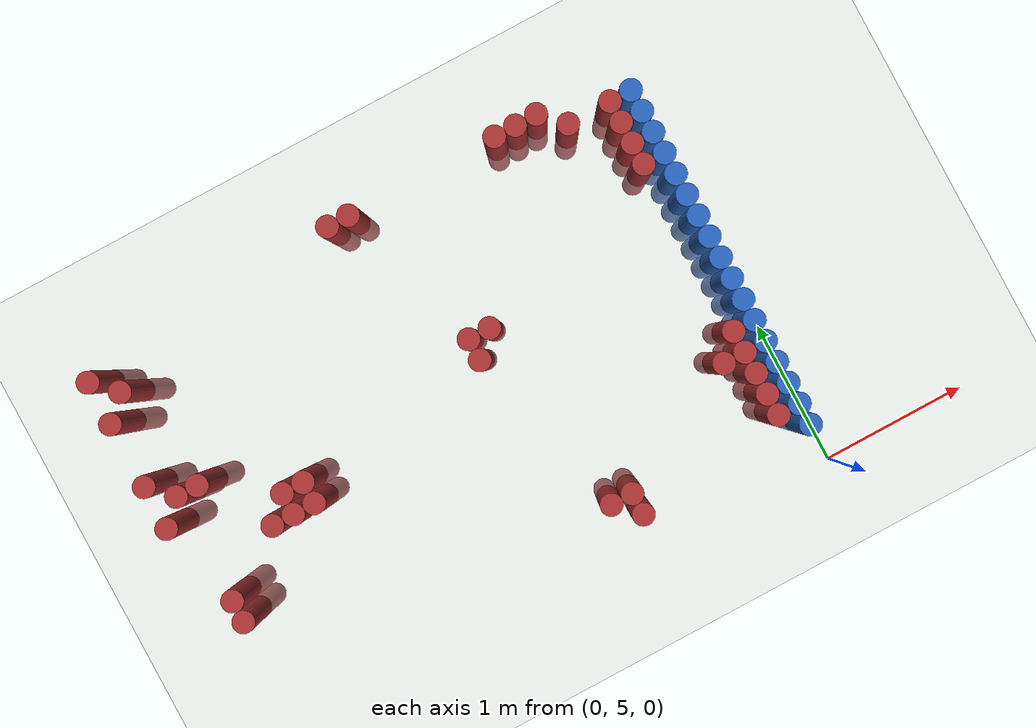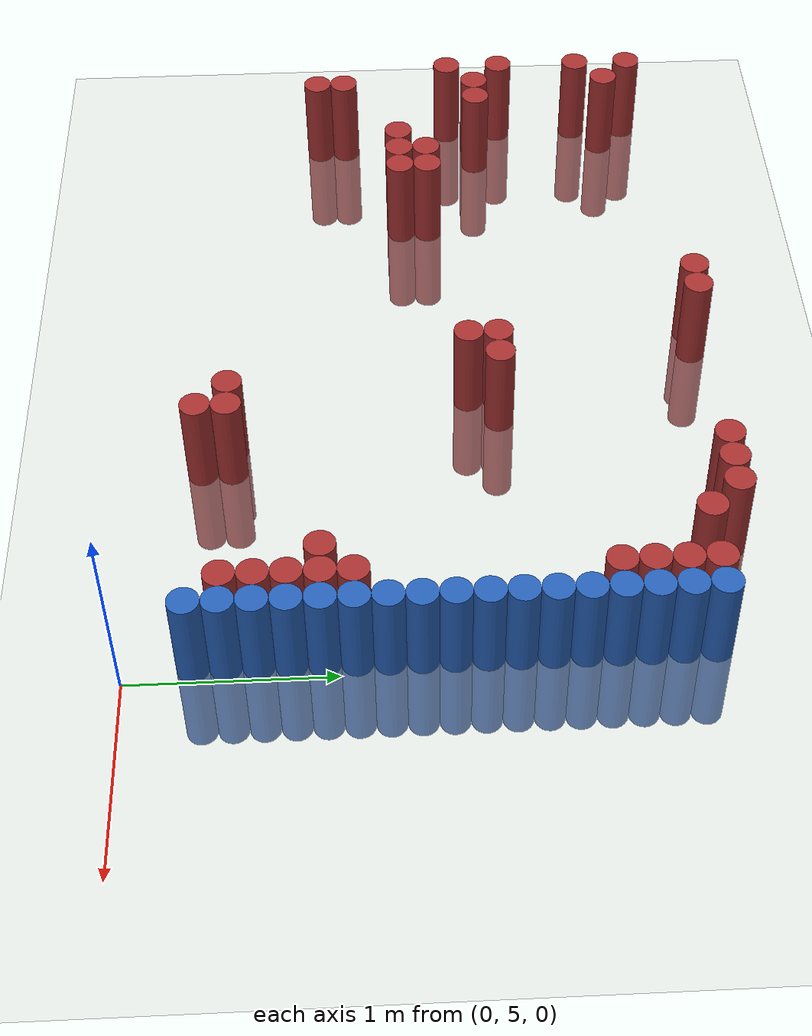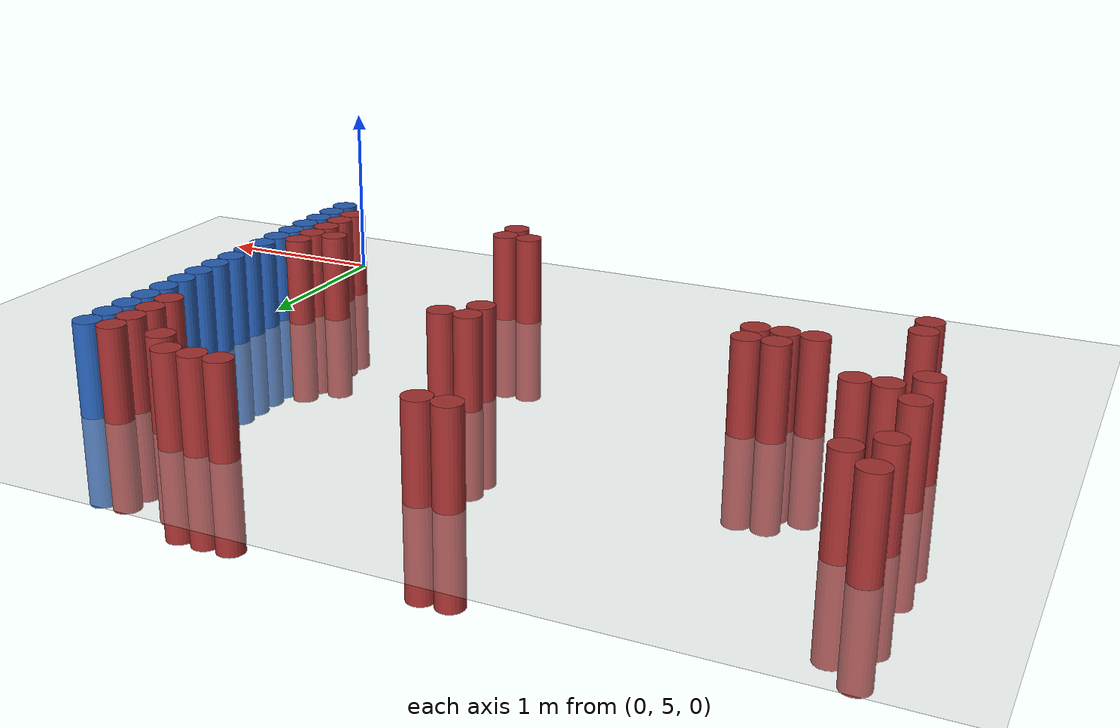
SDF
<sdf version="1.6">
 <world name="default">
  <model name="ground_plane">
   <static>1</static>
   <link name="link">
    <collision name="collision">
     <geometry><plane><normal>0 0 1</normal><size>100 100</size></plane></geometry>
     <surface><friction><ode><mu>100</mu><mu2>50</mu2></ode></friction></surface>
    </collision>
    <visual name="visual">
     <cast_shadows>0</cast_shadows>
     <geometry><plane><normal>0 0 1</normal><size>100 100</size></plane></geometry>
     <material>
      <script><uri>file://media/materials/scripts/gazebo.material</uri><name>Gazebo/Grey</name></script>
     </material>
    </visual>
   </link>
  </model>
  <model name="unit_cylinder_152">
   <static>1</static>
   <pose>-3.975000 6.675000 0.000000 0.000000 0.000000 0.000000</pose>
   <link name="link">
    <inertial>
     <mass>1</mass>
     <inertia><ixx>0.145833</ixx><ixy>0</ixy><ixz>0</ixz><iyy>0.145833</iyy><iyz>0</iyz><izz>0.125</izz></inertia>
    </inertial>
    <collision name="collision">
     <geometry><cylinder><radius>0.075000</radius><length>1</length></cylinder></geometry>
    </collision>
    <visual name="visual">
     <geometry><cylinder><radius>0.075000</radius><length>1</length></cylinder></geometry>
     <material>
      <ambient>0.648000 0.192000 0.192000 1</ambient>
      <diffuse>0.648000 0.192000 0.192000 1</diffuse>
     </material>
     <material>
      <script><name>Gazebo/Grey</name><uri>file://media/materials/scripts/gazebo.material</uri></script>
     </material>
    </visual>
   </link>
  </model>
  <model name="unit_cylinder_153">
   <static>1</static>
   <pose>-3.975000 6.975000 0.000000 0.000000 0.000000 0.000000</pose>
   <link name="link">
    <inertial>
     <mass>1</mass>
     <inertia><ixx>0.145833</ixx><ixy>0</ixy><ixz>0</ixz><iyy>0.145833</iyy><iyz>0</iyz><izz>0.125</izz></inertia>
    </inertial>
    <collision name="collision">
     <geometry><cylinder><radius>0.075000</radius><length>1</length></cylinder></geometry>
    </collision>
    <visual name="visual">
     <geometry><cylinder><radius>0.075000</radius><length>1</length></cylinder></geometry>
     <material>
      <ambient>0.648000 0.192000 0.192000 1</ambient>
      <diffuse>0.648000 0.192000 0.192000 1</diffuse>
     </material>
     <material>
      <script><name>Gazebo/Grey</name><uri>file://media/materials/scripts/gazebo.material</uri></script>
     </material>
    </visual>
   </link>
  </model>
  <model name="unit_cylinder_154">
   <static>1</static>
   <pose>-3.975000 7.425000 0.000000 0.000000 0.000000 0.000000</pose>
   <link name="link">
    <inertial>
     <mass>1</mass>
     <inertia><ixx>0.145833</ixx><ixy>0</ixy><ixz>0</ixz><iyy>0.145833</iyy><iyz>0</iyz><izz>0.125</izz></inertia>
    </inertial>
    <collision name="collision">
     <geometry><cylinder><radius>0.075000</radius><length>1</length></cylinder></geometry>
    </collision>
    <visual name="visual">
     <geometry><cylinder><radius>0.075000</radius><length>1</length></cylinder></geometry>
     <material>
      <ambient>0.648000 0.192000 0.192000 1</ambient>
      <diffuse>0.648000 0.192000 0.192000 1</diffuse>
     </material>
     <material>
      <script><name>Gazebo/Grey</name><uri>file://media/materials/scripts/gazebo.material</uri></script>
     </material>
    </visual>
   </link>
  </model>
  <model name="unit_cylinder_155">
   <static>1</static>
   <pose>-3.975000 7.725000 0.000000 0.000000 0.000000 0.000000</pose>
   <link name="link">
    <inertial>
     <mass>1</mass>
     <inertia><ixx>0.145833</ixx><ixy>0</ixy><ixz>0</ixz><iyy>0.145833</iyy><iyz>0</iyz><izz>0.125</izz></inertia>
    </inertial>
    <collision name="collision">
     <geometry><cylinder><radius>0.075000</radius><length>1</length></cylinder></geometry>
    </collision>
    <visual name="visual">
     <geometry><cylinder><radius>0.075000</radius><length>1</length></cylinder></geometry>
     <material>
      <ambient>0.648000 0.192000 0.192000 1</ambient>
      <diffuse>0.648000 0.192000 0.192000 1</diffuse>
     </material>
     <material>
      <script><name>Gazebo/Grey</name><uri>file://media/materials/scripts/gazebo.material</uri></script>
     </material>
    </visual>
   </link>
  </model>
  <model name="unit_cylinder_159">
   <static>1</static>
   <pose>-3.825000 5.925000 0.000000 0.000000 0.000000 0.000000</pose>
   <link name="link">
    <inertial>
     <mass>1</mass>
     <inertia><ixx>0.145833</ixx><ixy>0</ixy><ixz>0</ixz><iyy>0.145833</iyy><iyz>0</iyz><izz>0.125</izz></inertia>
    </inertial>
    <collision name="collision">
     <geometry><cylinder><radius>0.075000</radius><length>1</length></cylinder></geometry>
    </collision>
    <visual name="visual">
     <geometry><cylinder><radius>0.075000</radius><length>1</length></cylinder></geometry>
     <material>
      <ambient>0.648000 0.192000 0.192000 1</ambient>
      <diffuse>0.648000 0.192000 0.192000 1</diffuse>
     </material>
     <material>
      <script><name>Gazebo/Grey</name><uri>file://media/materials/scripts/gazebo.material</uri></script>
     </material>
    </visual>
   </link>
  </model>
  <model name="unit_cylinder_160">
   <static>1</static>
   <pose>-3.825000 6.075000 0.000000 0.000000 0.000000 0.000000</pose>
   <link name="link">
    <inertial>
     <mass>1</mass>
     <inertia><ixx>0.145833</ixx><ixy>0</ixy><ixz>0</ixz><iyy>0.145833</iyy><iyz>0</iyz><izz>0.125</izz></inertia>
    </inertial>
    <collision name="collision">
     <geometry><cylinder><radius>0.075000</radius><length>1</length></cylinder></geometry>
    </collision>
    <visual name="visual">
     <geometry><cylinder><radius>0.075000</radius><length>1</length></cylinder></geometry>
     <material>
      <ambient>0.648000 0.192000 0.192000 1</ambient>
      <diffuse>0.648000 0.192000 0.192000 1</diffuse>
     </material>
     <material>
      <script><name>Gazebo/Grey</name><uri>file://media/materials/scripts/gazebo.material</uri></script>
     </material>
    </visual>
   </link>
  </model>
  <model name="unit_cylinder_161">
   <static>1</static>
   <pose>-3.825000 6.825000 0.000000 0.000000 0.000000 0.000000</pose>
   <link name="link">
    <inertial>
     <mass>1</mass>
     <inertia><ixx>0.145833</ixx><ixy>0</ixy><ixz>0</ixz><iyy>0.145833</iyy><iyz>0</iyz><izz>0.125</izz></inertia>
    </inertial>
    <collision name="collision">
     <geometry><cylinder><radius>0.075000</radius><length>1</length></cylinder></geometry>
    </collision>
    <visual name="visual">
     <geometry><cylinder><radius>0.075000</radius><length>1</length></cylinder></geometry>
     <material>
      <ambient>0.648000 0.192000 0.192000 1</ambient>
      <diffuse>0.648000 0.192000 0.192000 1</diffuse>
     </material>
     <material>
      <script><name>Gazebo/Grey</name><uri>file://media/materials/scripts/gazebo.material</uri></script>
     </material>
    </visual>
   </link>
  </model>
  <model name="unit_cylinder_162">
   <static>1</static>
   <pose>-3.825000 7.575000 0.000000 0.000000 0.000000 0.000000</pose>
   <link name="link">
    <inertial>
     <mass>1</mass>
     <inertia><ixx>0.145833</ixx><ixy>0</ixy><ixz>0</ixz><iyy>0.145833</iyy><iyz>0</iyz><izz>0.125</izz></inertia>
    </inertial>
    <collision name="collision">
     <geometry><cylinder><radius>0.075000</radius><length>1</length></cylinder></geometry>
    </collision>
    <visual name="visual">
     <geometry><cylinder><radius>0.075000</radius><length>1</length></cylinder></geometry>
     <material>
      <ambient>0.648000 0.192000 0.192000 1</ambient>
      <diffuse>0.648000 0.192000 0.192000 1</diffuse>
     </material>
     <material>
      <script><name>Gazebo/Grey</name><uri>file://media/materials/scripts/gazebo.material</uri></script>
     </material>
    </visual>
   </link>
  </model>
  <model name="unit_cylinder_165">
   <static>1</static>
   <pose>-3.675000 6.825000 0.000000 0.000000 0.000000 0.000000</pose>
   <link name="link">
    <inertial>
     <mass>1</mass>
     <inertia><ixx>0.145833</ixx><ixy>0</ixy><ixz>0</ixz><iyy>0.145833</iyy><iyz>0</iyz><izz>0.125</izz></inertia>
    </inertial>
    <collision name="collision">
     <geometry><cylinder><radius>0.075000</radius><length>1</length></cylinder></geometry>
    </collision>
    <visual name="visual">
     <geometry><cylinder><radius>0.075000</radius><length>1</length></cylinder></geometry>
     <material>
      <ambient>0.648000 0.192000 0.192000 1</ambient>
      <diffuse>0.648000 0.192000 0.192000 1</diffuse>
     </material>
     <material>
      <script><name>Gazebo/Grey</name><uri>file://media/materials/scripts/gazebo.material</uri></script>
     </material>
    </visual>
   </link>
  </model>
  <model name="unit_cylinder_166">
   <static>1</static>
   <pose>-3.375000 6.375000 0.000000 0.000000 0.000000 0.000000</pose>
   <link name="link">
    <inertial>
     <mass>1</mass>
     <inertia><ixx>0.145833</ixx><ixy>0</ixy><ixz>0</ixz><iyy>0.145833</iyy><iyz>0</iyz><izz>0.125</izz></inertia>
    </inertial>
    <collision name="collision">
     <geometry><cylinder><radius>0.075000</radius><length>1</length></cylinder></geometry>
    </collision>
    <visual name="visual">
     <geometry><cylinder><radius>0.075000</radius><length>1</length></cylinder></geometry>
     <material>
      <ambient>0.648000 0.192000 0.192000 1</ambient>
      <diffuse>0.648000 0.192000 0.192000 1</diffuse>
     </material>
     <material>
      <script><name>Gazebo/Grey</name><uri>file://media/materials/scripts/gazebo.material</uri></script>
     </material>
    </visual>
   </link>
  </model>
  <model name="unit_cylinder_167">
   <static>1</static>
   <pose>-3.225000 6.375000 0.000000 0.000000 0.000000 0.000000</pose>
   <link name="link">
    <inertial>
     <mass>1</mass>
     <inertia><ixx>0.145833</ixx><ixy>0</ixy><ixz>0</ixz><iyy>0.145833</iyy><iyz>0</iyz><izz>0.125</izz></inertia>
    </inertial>
    <collision name="collision">
     <geometry><cylinder><radius>0.075000</radius><length>1</length></cylinder></geometry>
    </collision>
    <visual name="visual">
     <geometry><cylinder><radius>0.075000</radius><length>1</length></cylinder></geometry>
     <material>
      <ambient>0.648000 0.192000 0.192000 1</ambient>
      <diffuse>0.648000 0.192000 0.192000 1</diffuse>
     </material>
     <material>
      <script><name>Gazebo/Grey</name><uri>file://media/materials/scripts/gazebo.material</uri></script>
     </material>
    </visual>
   </link>
  </model>
  <model name="unit_cylinder_168">
   <static>1</static>
   <pose>-3.225000 6.525000 0.000000 0.000000 0.000000 0.000000</pose>
   <link name="link">
    <inertial>
     <mass>1</mass>
     <inertia><ixx>0.145833</ixx><ixy>0</ixy><ixz>0</ixz><iyy>0.145833</iyy><iyz>0</iyz><izz>0.125</izz></inertia>
    </inertial>
    <collision name="collision">
     <geometry><cylinder><radius>0.075000</radius><length>1</length></cylinder></geometry>
    </collision>
    <visual name="visual">
     <geometry><cylinder><radius>0.075000</radius><length>1</length></cylinder></geometry>
     <material>
      <ambient>0.648000 0.192000 0.192000 1</ambient>
      <diffuse>0.648000 0.192000 0.192000 1</diffuse>
     </material>
     <material>
      <script><name>Gazebo/Grey</name><uri>file://media/materials/scripts/gazebo.material</uri></script>
     </material>
    </visual>
   </link>
  </model>
  <model name="unit_cylinder_169">
   <static>1</static>
   <pose>-3.075000 6.375000 0.000000 0.000000 0.000000 0.000000</pose>
   <link name="link">
    <inertial>
     <mass>1</mass>
     <inertia><ixx>0.145833</ixx><ixy>0</ixy><ixz>0</ixz><iyy>0.145833</iyy><iyz>0</iyz><izz>0.125</izz></inertia>
    </inertial>
    <collision name="collision">
     <geometry><cylinder><radius>0.075000</radius><length>1</length></cylinder></geometry>
    </collision>
    <visual name="visual">
     <geometry><cylinder><radius>0.075000</radius><length>1</length></cylinder></geometry>
     <material>
      <ambient>0.648000 0.192000 0.192000 1</ambient>
      <diffuse>0.648000 0.192000 0.192000 1</diffuse>
     </material>
     <material>
      <script><name>Gazebo/Grey</name><uri>file://media/materials/scripts/gazebo.material</uri></script>
     </material>
    </visual>
   </link>
  </model>
  <model name="unit_cylinder_170">
   <static>1</static>
   <pose>-3.075000 6.525000 0.000000 0.000000 0.000000 0.000000</pose>
   <link name="link">
    <inertial>
     <mass>1</mass>
     <inertia><ixx>0.145833</ixx><ixy>0</ixy><ixz>0</ixz><iyy>0.145833</iyy><iyz>0</iyz><izz>0.125</izz></inertia>
    </inertial>
    <collision name="collision">
     <geometry><cylinder><radius>0.075000</radius><length>1</length></cylinder></geometry>
    </collision>
    <visual name="visual">
     <geometry><cylinder><radius>0.075000</radius><length>1</length></cylinder></geometry>
     <material>
      <ambient>0.648000 0.192000 0.192000 1</ambient>
      <diffuse>0.648000 0.192000 0.192000 1</diffuse>
     </material>
     <material>
      <script><name>Gazebo/Grey</name><uri>file://media/materials/scripts/gazebo.material</uri></script>
     </material>
    </visual>
   </link>
  </model>
  <model name="unit_cylinder_188">
   <static>1</static>
   <pose>-2.175000 7.875000 0.000000 0.000000 0.000000 0.000000</pose>
   <link name="link">
    <inertial>
     <mass>1</mass>
     <inertia><ixx>0.145833</ixx><ixy>0</ixy><ixz>0</ixz><iyy>0.145833</iyy><iyz>0</iyz><izz>0.125</izz></inertia>
    </inertial>
    <collision name="collision">
     <geometry><cylinder><radius>0.075000</radius><length>1</length></cylinder></geometry>
    </collision>
    <visual name="visual">
     <geometry><cylinder><radius>0.075000</radius><length>1</length></cylinder></geometry>
     <material>
      <ambient>0.648000 0.192000 0.192000 1</ambient>
      <diffuse>0.648000 0.192000 0.192000 1</diffuse>
     </material>
     <material>
      <script><name>Gazebo/Grey</name><uri>file://media/materials/scripts/gazebo.material</uri></script>
     </material>
    </visual>
   </link>
  </model>
  <model name="unit_cylinder_190">
   <static>1</static>
   <pose>-2.025000 7.875000 0.000000 0.000000 0.000000 0.000000</pose>
   <link name="link">
    <inertial>
     <mass>1</mass>
     <inertia><ixx>0.145833</ixx><ixy>0</ixy><ixz>0</ixz><iyy>0.145833</iyy><iyz>0</iyz><izz>0.125</izz></inertia>
    </inertial>
    <collision name="collision">
     <geometry><cylinder><radius>0.075000</radius><length>1</length></cylinder></geometry>
    </collision>
    <visual name="visual">
     <geometry><cylinder><radius>0.075000</radius><length>1</length></cylinder></geometry>
     <material>
      <ambient>0.648000 0.192000 0.192000 1</ambient>
      <diffuse>0.648000 0.192000 0.192000 1</diffuse>
     </material>
     <material>
      <script><name>Gazebo/Grey</name><uri>file://media/materials/scripts/gazebo.material</uri></script>
     </material>
    </visual>
   </link>
  </model>
  <model name="unit_cylinder_196">
   <static>1</static>
   <pose>-1.725000 6.675000 0.000000 0.000000 0.000000 0.000000</pose>
   <link name="link">
    <inertial>
     <mass>1</mass>
     <inertia><ixx>0.145833</ixx><ixy>0</ixy><ixz>0</ixz><iyy>0.145833</iyy><iyz>0</iyz><izz>0.125</izz></inertia>
    </inertial>
    <collision name="collision">
     <geometry><cylinder><radius>0.075000</radius><length>1</length></cylinder></geometry>
    </collision>
    <visual name="visual">
     <geometry><cylinder><radius>0.075000</radius><length>1</length></cylinder></geometry>
     <material>
      <ambient>0.648000 0.192000 0.192000 1</ambient>
      <diffuse>0.648000 0.192000 0.192000 1</diffuse>
     </material>
     <material>
      <script><name>Gazebo/Grey</name><uri>file://media/materials/scripts/gazebo.material</uri></script>
     </material>
    </visual>
   </link>
  </model>
  <model name="unit_cylinder_197">
   <static>1</static>
   <pose>-1.725000 6.825000 0.000000 0.000000 0.000000 0.000000</pose>
   <link name="link">
    <inertial>
     <mass>1</mass>
     <inertia><ixx>0.145833</ixx><ixy>0</ixy><ixz>0</ixz><iyy>0.145833</iyy><iyz>0</iyz><izz>0.125</izz></inertia>
    </inertial>
    <collision name="collision">
     <geometry><cylinder><radius>0.075000</radius><length>1</length></cylinder></geometry>
    </collision>
    <visual name="visual">
     <geometry><cylinder><radius>0.075000</radius><length>1</length></cylinder></geometry>
     <material>
      <ambient>0.648000 0.192000 0.192000 1</ambient>
      <diffuse>0.648000 0.192000 0.192000 1</diffuse>
     </material>
     <material>
      <script><name>Gazebo/Grey</name><uri>file://media/materials/scripts/gazebo.material</uri></script>
     </material>
    </visual>
   </link>
  </model>
  <model name="unit_cylinder_199">
   <static>1</static>
   <pose>-1.575000 6.825000 0.000000 0.000000 0.000000 0.000000</pose>
   <link name="link">
    <inertial>
     <mass>1</mass>
     <inertia><ixx>0.145833</ixx><ixy>0</ixy><ixz>0</ixz><iyy>0.145833</iyy><iyz>0</iyz><izz>0.125</izz></inertia>
    </inertial>
    <collision name="collision">
     <geometry><cylinder><radius>0.075000</radius><length>1</length></cylinder></geometry>
    </collision>
    <visual name="visual">
     <geometry><cylinder><radius>0.075000</radius><length>1</length></cylinder></geometry>
     <material>
      <ambient>0.648000 0.192000 0.192000 1</ambient>
      <diffuse>0.648000 0.192000 0.192000 1</diffuse>
     </material>
     <material>
      <script><name>Gazebo/Grey</name><uri>file://media/materials/scripts/gazebo.material</uri></script>
     </material>
    </visual>
   </link>
  </model>
  <model name="unit_cylinder_204">
   <static>1</static>
   <pose>-1.425000 5.475000 0.000000 0.000000 0.000000 0.000000</pose>
   <link name="link">
    <inertial>
     <mass>1</mass>
     <inertia><ixx>0.145833</ixx><ixy>0</ixy><ixz>0</ixz><iyy>0.145833</iyy><iyz>0</iyz><izz>0.125</izz></inertia>
    </inertial>
    <collision name="collision">
     <geometry><cylinder><radius>0.075000</radius><length>1</length></cylinder></geometry>
    </collision>
    <visual name="visual">
     <geometry><cylinder><radius>0.075000</radius><length>1</length></cylinder></geometry>
     <material>
      <ambient>0.648000 0.192000 0.192000 1</ambient>
      <diffuse>0.648000 0.192000 0.192000 1</diffuse>
     </material>
     <material>
      <script><name>Gazebo/Grey</name><uri>file://media/materials/scripts/gazebo.material</uri></script>
     </material>
    </visual>
   </link>
  </model>
  <model name="unit_cylinder_206">
   <static>1</static>
   <pose>-1.275000 5.325000 0.000000 0.000000 0.000000 0.000000</pose>
   <link name="link">
    <inertial>
     <mass>1</mass>
     <inertia><ixx>0.145833</ixx><ixy>0</ixy><ixz>0</ixz><iyy>0.145833</iyy><iyz>0</iyz><izz>0.125</izz></inertia>
    </inertial>
    <collision name="collision">
     <geometry><cylinder><radius>0.075000</radius><length>1</length></cylinder></geometry>
    </collision>
    <visual name="visual">
     <geometry><cylinder><radius>0.075000</radius><length>1</length></cylinder></geometry>
     <material>
      <ambient>0.648000 0.192000 0.192000 1</ambient>
      <diffuse>0.648000 0.192000 0.192000 1</diffuse>
     </material>
     <material>
      <script><name>Gazebo/Grey</name><uri>file://media/materials/scripts/gazebo.material</uri></script>
     </material>
    </visual>
   </link>
  </model>
  <model name="unit_cylinder_207">
   <static>1</static>
   <pose>-1.275000 5.475000 0.000000 0.000000 0.000000 0.000000</pose>
   <link name="link">
    <inertial>
     <mass>1</mass>
     <inertia><ixx>0.145833</ixx><ixy>0</ixy><ixz>0</ixz><iyy>0.145833</iyy><iyz>0</iyz><izz>0.125</izz></inertia>
    </inertial>
    <collision name="collision">
     <geometry><cylinder><radius>0.075000</radius><length>1</length></cylinder></geometry>
    </collision>
    <visual name="visual">
     <geometry><cylinder><radius>0.075000</radius><length>1</length></cylinder></geometry>
     <material>
      <ambient>0.648000 0.192000 0.192000 1</ambient>
      <diffuse>0.648000 0.192000 0.192000 1</diffuse>
     </material>
     <material>
      <script><name>Gazebo/Grey</name><uri>file://media/materials/scripts/gazebo.material</uri></script>
     </material>
    </visual>
   </link>
  </model>
  <model name="unit_cylinder_210">
   <static>1</static>
   <pose>-0.975000 7.875000 0.000000 0.000000 0.000000 0.000000</pose>
   <link name="link">
    <inertial>
     <mass>1</mass>
     <inertia><ixx>0.145833</ixx><ixy>0</ixy><ixz>0</ixz><iyy>0.145833</iyy><iyz>0</iyz><izz>0.125</izz></inertia>
    </inertial>
    <collision name="collision">
     <geometry><cylinder><radius>0.075000</radius><length>1</length></cylinder></geometry>
    </collision>
    <visual name="visual">
     <geometry><cylinder><radius>0.075000</radius><length>1</length></cylinder></geometry>
     <material>
      <ambient>0.648000 0.192000 0.192000 1</ambient>
      <diffuse>0.648000 0.192000 0.192000 1</diffuse>
     </material>
     <material>
      <script><name>Gazebo/Grey</name><uri>file://media/materials/scripts/gazebo.material</uri></script>
     </material>
    </visual>
   </link>
  </model>
  <model name="unit_cylinder_211">
   <static>1</static>
   <pose>-0.825000 7.875000 0.000000 0.000000 0.000000 0.000000</pose>
   <link name="link">
    <inertial>
     <mass>1</mass>
     <inertia><ixx>0.145833</ixx><ixy>0</ixy><ixz>0</ixz><iyy>0.145833</iyy><iyz>0</iyz><izz>0.125</izz></inertia>
    </inertial>
    <collision name="collision">
     <geometry><cylinder><radius>0.075000</radius><length>1</length></cylinder></geometry>
    </collision>
    <visual name="visual">
     <geometry><cylinder><radius>0.075000</radius><length>1</length></cylinder></geometry>
     <material>
      <ambient>0.648000 0.192000 0.192000 1</ambient>
      <diffuse>0.648000 0.192000 0.192000 1</diffuse>
     </material>
     <material>
      <script><name>Gazebo/Grey</name><uri>file://media/materials/scripts/gazebo.material</uri></script>
     </material>
    </visual>
   </link>
  </model>
  <model name="unit_cylinder_213">
   <static>1</static>
   <pose>-0.675000 7.875000 0.000000 0.000000 0.000000 0.000000</pose>
   <link name="link">
    <inertial>
     <mass>1</mass>
     <inertia><ixx>0.145833</ixx><ixy>0</ixy><ixz>0</ixz><iyy>0.145833</iyy><iyz>0</iyz><izz>0.125</izz></inertia>
    </inertial>
    <collision name="collision">
     <geometry><cylinder><radius>0.075000</radius><length>1</length></cylinder></geometry>
    </collision>
    <visual name="visual">
     <geometry><cylinder><radius>0.075000</radius><length>1</length></cylinder></geometry>
     <material>
      <ambient>0.648000 0.192000 0.192000 1</ambient>
      <diffuse>0.648000 0.192000 0.192000 1</diffuse>
     </material>
     <material>
      <script><name>Gazebo/Grey</name><uri>file://media/materials/scripts/gazebo.material</uri></script>
     </material>
    </visual>
   </link>
  </model>
  <model name="unit_cylinder_216">
   <static>1</static>
   <pose>-0.525000 7.725000 0.000000 0.000000 0.000000 0.000000</pose>
   <link name="link">
    <inertial>
     <mass>1</mass>
     <inertia><ixx>0.145833</ixx><ixy>0</ixy><ixz>0</ixz><iyy>0.145833</iyy><iyz>0</iyz><izz>0.125</izz></inertia>
    </inertial>
    <collision name="collision">
     <geometry><cylinder><radius>0.075000</radius><length>1</length></cylinder></geometry>
    </collision>
    <visual name="visual">
     <geometry><cylinder><radius>0.075000</radius><length>1</length></cylinder></geometry>
     <material>
      <ambient>0.648000 0.192000 0.192000 1</ambient>
      <diffuse>0.648000 0.192000 0.192000 1</diffuse>
     </material>
     <material>
      <script><name>Gazebo/Grey</name><uri>file://media/materials/scripts/gazebo.material</uri></script>
     </material>
    </visual>
   </link>
  </model>
  <model name="unit_cylinder_220">
   <static>1</static>
   <pose>-0.375000 5.925000 0.000000 0.000000 0.000000 0.000000</pose>
   <link name="link">
    <inertial>
     <mass>1</mass>
     <inertia><ixx>0.145833</ixx><ixy>0</ixy><ixz>0</ixz><iyy>0.145833</iyy><iyz>0</iyz><izz>0.125</izz></inertia>
    </inertial>
    <collision name="collision">
     <geometry><cylinder><radius>0.075000</radius><length>1</length></cylinder></geometry>
    </collision>
    <visual name="visual">
     <geometry><cylinder><radius>0.075000</radius><length>1</length></cylinder></geometry>
     <material>
      <ambient>0.648000 0.192000 0.192000 1</ambient>
      <diffuse>0.648000 0.192000 0.192000 1</diffuse>
     </material>
     <material>
      <script><name>Gazebo/Grey</name><uri>file://media/materials/scripts/gazebo.material</uri></script>
     </material>
    </visual>
   </link>
  </model>
  <model name="unit_cylinder_222">
   <static>1</static>
   <pose>-0.225000 5.475000 0.000000 0.000000 0.000000 0.000000</pose>
   <link name="link">
    <inertial>
     <mass>1</mass>
     <inertia><ixx>0.145833</ixx><ixy>0</ixy><ixz>0</ixz><iyy>0.145833</iyy><iyz>0</iyz><izz>0.125</izz></inertia>
    </inertial>
    <collision name="collision">
     <geometry><cylinder><radius>0.075000</radius><length>1</length></cylinder></geometry>
    </collision>
    <visual name="visual">
     <geometry><cylinder><radius>0.075000</radius><length>1</length></cylinder></geometry>
     <material>
      <ambient>0.648000 0.192000 0.192000 1</ambient>
      <diffuse>0.648000 0.192000 0.192000 1</diffuse>
     </material>
     <material>
      <script><name>Gazebo/Grey</name><uri>file://media/materials/scripts/gazebo.material</uri></script>
     </material>
    </visual>
   </link>
  </model>
  <model name="unit_cylinder_223">
   <static>1</static>
   <pose>-0.225000 5.625000 0.000000 0.000000 0.000000 0.000000</pose>
   <link name="link">
    <inertial>
     <mass>1</mass>
     <inertia><ixx>0.145833</ixx><ixy>0</ixy><ixz>0</ixz><iyy>0.145833</iyy><iyz>0</iyz><izz>0.125</izz></inertia>
    </inertial>
    <collision name="collision">
     <geometry><cylinder><radius>0.075000</radius><length>1</length></cylinder></geometry>
    </collision>
    <visual name="visual">
     <geometry><cylinder><radius>0.075000</radius><length>1</length></cylinder></geometry>
     <material>
      <ambient>0.648000 0.192000 0.192000 1</ambient>
      <diffuse>0.648000 0.192000 0.192000 1</diffuse>
     </material>
     <material>
      <script><name>Gazebo/Grey</name><uri>file://media/materials/scripts/gazebo.material</uri></script>
     </material>
    </visual>
   </link>
  </model>
  <model name="unit_cylinder_224">
   <static>1</static>
   <pose>-0.225000 5.775000 0.000000 0.000000 0.000000 0.000000</pose>
   <link name="link">
    <inertial>
     <mass>1</mass>
     <inertia><ixx>0.145833</ixx><ixy>0</ixy><ixz>0</ixz><iyy>0.145833</iyy><iyz>0</iyz><izz>0.125</izz></inertia>
    </inertial>
    <collision name="collision">
     <geometry><cylinder><radius>0.075000</radius><length>1</length></cylinder></geometry>
    </collision>
    <visual name="visual">
     <geometry><cylinder><radius>0.075000</radius><length>1</length></cylinder></geometry>
     <material>
      <ambient>0.648000 0.192000 0.192000 1</ambient>
      <diffuse>0.648000 0.192000 0.192000 1</diffuse>
     </material>
     <material>
      <script><name>Gazebo/Grey</name><uri>file://media/materials/scripts/gazebo.material</uri></script>
     </material>
    </visual>
   </link>
  </model>
  <model name="unit_cylinder_225">
   <static>1</static>
   <pose>-0.225000 5.925000 0.000000 0.000000 0.000000 0.000000</pose>
   <link name="link">
    <inertial>
     <mass>1</mass>
     <inertia><ixx>0.145833</ixx><ixy>0</ixy><ixz>0</ixz><iyy>0.145833</iyy><iyz>0</iyz><izz>0.125</izz></inertia>
    </inertial>
    <collision name="collision">
     <geometry><cylinder><radius>0.075000</radius><length>1</length></cylinder></geometry>
    </collision>
    <visual name="visual">
     <geometry><cylinder><radius>0.075000</radius><length>1</length></cylinder></geometry>
     <material>
      <ambient>0.648000 0.192000 0.192000 1</ambient>
      <diffuse>0.648000 0.192000 0.192000 1</diffuse>
     </material>
     <material>
      <script><name>Gazebo/Grey</name><uri>file://media/materials/scripts/gazebo.material</uri></script>
     </material>
    </visual>
   </link>
  </model>
  <model name="unit_cylinder_226">
   <static>1</static>
   <pose>-0.225000 6.075000 0.000000 0.000000 0.000000 0.000000</pose>
   <link name="link">
    <inertial>
     <mass>1</mass>
     <inertia><ixx>0.145833</ixx><ixy>0</ixy><ixz>0</ixz><iyy>0.145833</iyy><iyz>0</iyz><izz>0.125</izz></inertia>
    </inertial>
    <collision name="collision">
     <geometry><cylinder><radius>0.075000</radius><length>1</length></cylinder></geometry>
    </collision>
    <visual name="visual">
     <geometry><cylinder><radius>0.075000</radius><length>1</length></cylinder></geometry>
     <material>
      <ambient>0.648000 0.192000 0.192000 1</ambient>
      <diffuse>0.648000 0.192000 0.192000 1</diffuse>
     </material>
     <material>
      <script><name>Gazebo/Grey</name><uri>file://media/materials/scripts/gazebo.material</uri></script>
     </material>
    </visual>
   </link>
  </model>
  <model name="unit_cylinder_227">
   <static>1</static>
   <pose>-0.225000 7.275000 0.000000 0.000000 0.000000 0.000000</pose>
   <link name="link">
    <inertial>
     <mass>1</mass>
     <inertia><ixx>0.145833</ixx><ixy>0</ixy><ixz>0</ixz><iyy>0.145833</iyy><iyz>0</iyz><izz>0.125</izz></inertia>
    </inertial>
    <collision name="collision">
     <geometry><cylinder><radius>0.075000</radius><length>1</length></cylinder></geometry>
    </collision>
    <visual name="visual">
     <geometry><cylinder><radius>0.075000</radius><length>1</length></cylinder></geometry>
     <material>
      <ambient>0.648000 0.192000 0.192000 1</ambient>
      <diffuse>0.648000 0.192000 0.192000 1</diffuse>
     </material>
     <material>
      <script><name>Gazebo/Grey</name><uri>file://media/materials/scripts/gazebo.material</uri></script>
     </material>
    </visual>
   </link>
  </model>
  <model name="unit_cylinder_228">
   <static>1</static>
   <pose>-0.225000 7.425000 0.000000 0.000000 0.000000 0.000000</pose>
   <link name="link">
    <inertial>
     <mass>1</mass>
     <inertia><ixx>0.145833</ixx><ixy>0</ixy><ixz>0</ixz><iyy>0.145833</iyy><iyz>0</iyz><izz>0.125</izz></inertia>
    </inertial>
    <collision name="collision">
     <geometry><cylinder><radius>0.075000</radius><length>1</length></cylinder></geometry>
    </collision>
    <visual name="visual">
     <geometry><cylinder><radius>0.075000</radius><length>1</length></cylinder></geometry>
     <material>
      <ambient>0.648000 0.192000 0.192000 1</ambient>
      <diffuse>0.648000 0.192000 0.192000 1</diffuse>
     </material>
     <material>
      <script><name>Gazebo/Grey</name><uri>file://media/materials/scripts/gazebo.material</uri></script>
     </material>
    </visual>
   </link>
  </model>
  <model name="unit_cylinder_229">
   <static>1</static>
   <pose>-0.225000 7.575000 0.000000 0.000000 0.000000 0.000000</pose>
   <link name="link">
    <inertial>
     <mass>1</mass>
     <inertia><ixx>0.145833</ixx><ixy>0</ixy><ixz>0</ixz><iyy>0.145833</iyy><iyz>0</iyz><izz>0.125</izz></inertia>
    </inertial>
    <collision name="collision">
     <geometry><cylinder><radius>0.075000</radius><length>1</length></cylinder></geometry>
    </collision>
    <visual name="visual">
     <geometry><cylinder><radius>0.075000</radius><length>1</length></cylinder></geometry>
     <material>
      <ambient>0.648000 0.192000 0.192000 1</ambient>
      <diffuse>0.648000 0.192000 0.192000 1</diffuse>
     </material>
     <material>
      <script><name>Gazebo/Grey</name><uri>file://media/materials/scripts/gazebo.material</uri></script>
     </material>
    </visual>
   </link>
  </model>
  <model name="unit_cylinder_230">
   <static>1</static>
   <pose>-0.225000 7.725000 0.000000 0.000000 0.000000 0.000000</pose>
   <link name="link">
    <inertial>
     <mass>1</mass>
     <inertia><ixx>0.145833</ixx><ixy>0</ixy><ixz>0</ixz><iyy>0.145833</iyy><iyz>0</iyz><izz>0.125</izz></inertia>
    </inertial>
    <collision name="collision">
     <geometry><cylinder><radius>0.075000</radius><length>1</length></cylinder></geometry>
    </collision>
    <visual name="visual">
     <geometry><cylinder><radius>0.075000</radius><length>1</length></cylinder></geometry>
     <material>
      <ambient>0.648000 0.192000 0.192000 1</ambient>
      <diffuse>0.648000 0.192000 0.192000 1</diffuse>
     </material>
     <material>
      <script><name>Gazebo/Grey</name><uri>file://media/materials/scripts/gazebo.material</uri></script>
     </material>
    </visual>
   </link>
  </model>
  <model name="unit_cylinder_239">
   <static>1</static>
   <pose>-0.075000 5.325000 0.000000 0.000000 0.000000 0.000000</pose>
   <link name="link">
    <inertial>
     <mass>1</mass>
     <inertia><ixx>0.145833</ixx><ixy>0</ixy><ixz>0</ixz><iyy>0.145833</iyy><iyz>0</iyz><izz>0.125</izz></inertia>
    </inertial>
    <collision name="collision">
     <geometry><cylinder><radius>0.075000</radius><length>1</length></cylinder></geometry>
    </collision>
    <visual name="visual">
     <geometry><cylinder><radius>0.075000</radius><length>1</length></cylinder></geometry>
     <material>
      <ambient>0.152000 0.379000 0.720000 1</ambient>
      <diffuse>0.152000 0.379000 0.720000 1</diffuse>
     </material>
     <material>
      <script><name>Gazebo/Grey</name><uri>file://media/materials/scripts/gazebo.material</uri></script>
     </material>
    </visual>
   </link>
  </model>
  <model name="unit_cylinder_240">
   <static>1</static>
   <pose>-0.075000 5.475000 0.000000 0.000000 0.000000 0.000000</pose>
   <link name="link">
    <inertial>
     <mass>1</mass>
     <inertia><ixx>0.145833</ixx><ixy>0</ixy><ixz>0</ixz><iyy>0.145833</iyy><iyz>0</iyz><izz>0.125</izz></inertia>
    </inertial>
    <collision name="collision">
     <geometry><cylinder><radius>0.075000</radius><length>1</length></cylinder></geometry>
    </collision>
    <visual name="visual">
     <geometry><cylinder><radius>0.075000</radius><length>1</length></cylinder></geometry>
     <material>
      <ambient>0.152000 0.379000 0.720000 1</ambient>
      <diffuse>0.152000 0.379000 0.720000 1</diffuse>
     </material>
     <material>
      <script><name>Gazebo/Grey</name><uri>file://media/materials/scripts/gazebo.material</uri></script>
     </material>
    </visual>
   </link>
  </model>
  <model name="unit_cylinder_241">
   <static>1</static>
   <pose>-0.075000 5.625000 0.000000 0.000000 0.000000 0.000000</pose>
   <link name="link">
    <inertial>
     <mass>1</mass>
     <inertia><ixx>0.145833</ixx><ixy>0</ixy><ixz>0</ixz><iyy>0.145833</iyy><iyz>0</iyz><izz>0.125</izz></inertia>
    </inertial>
    <collision name="collision">
     <geometry><cylinder><radius>0.075000</radius><length>1</length></cylinder></geometry>
    </collision>
    <visual name="visual">
     <geometry><cylinder><radius>0.075000</radius><length>1</length></cylinder></geometry>
     <material>
      <ambient>0.152000 0.379000 0.720000 1</ambient>
      <diffuse>0.152000 0.379000 0.720000 1</diffuse>
     </material>
     <material>
      <script><name>Gazebo/Grey</name><uri>file://media/materials/scripts/gazebo.material</uri></script>
     </material>
    </visual>
   </link>
  </model>
  <model name="unit_cylinder_242">
   <static>1</static>
   <pose>-0.075000 5.775000 0.000000 0.000000 0.000000 0.000000</pose>
   <link name="link">
    <inertial>
     <mass>1</mass>
     <inertia><ixx>0.145833</ixx><ixy>0</ixy><ixz>0</ixz><iyy>0.145833</iyy><iyz>0</iyz><izz>0.125</izz></inertia>
    </inertial>
    <collision name="collision">
     <geometry><cylinder><radius>0.075000</radius><length>1</length></cylinder></geometry>
    </collision>
    <visual name="visual">
     <geometry><cylinder><radius>0.075000</radius><length>1</length></cylinder></geometry>
     <material>
      <ambient>0.152000 0.379000 0.720000 1</ambient>
      <diffuse>0.152000 0.379000 0.720000 1</diffuse>
     </material>
     <material>
      <script><name>Gazebo/Grey</name><uri>file://media/materials/scripts/gazebo.material</uri></script>
     </material>
    </visual>
   </link>
  </model>
  <model name="unit_cylinder_243">
   <static>1</static>
   <pose>-0.075000 5.925000 0.000000 0.000000 0.000000 0.000000</pose>
   <link name="link">
    <inertial>
     <mass>1</mass>
     <inertia><ixx>0.145833</ixx><ixy>0</ixy><ixz>0</ixz><iyy>0.145833</iyy><iyz>0</iyz><izz>0.125</izz></inertia>
    </inertial>
    <collision name="collision">
     <geometry><cylinder><radius>0.075000</radius><length>1</length></cylinder></geometry>
    </collision>
    <visual name="visual">
     <geometry><cylinder><radius>0.075000</radius><length>1</length></cylinder></geometry>
     <material>
      <ambient>0.152000 0.379000 0.720000 1</ambient>
      <diffuse>0.152000 0.379000 0.720000 1</diffuse>
     </material>
     <material>
      <script><name>Gazebo/Grey</name><uri>file://media/materials/scripts/gazebo.material</uri></script>
     </material>
    </visual>
   </link>
  </model>
  <model name="unit_cylinder_244">
   <static>1</static>
   <pose>-0.075000 6.075000 0.000000 0.000000 0.000000 0.000000</pose>
   <link name="link">
    <inertial>
     <mass>1</mass>
     <inertia><ixx>0.145833</ixx><ixy>0</ixy><ixz>0</ixz><iyy>0.145833</iyy><iyz>0</iyz><izz>0.125</izz></inertia>
    </inertial>
    <collision name="collision">
     <geometry><cylinder><radius>0.075000</radius><length>1</length></cylinder></geometry>
    </collision>
    <visual name="visual">
     <geometry><cylinder><radius>0.075000</radius><length>1</length></cylinder></geometry>
     <material>
      <ambient>0.152000 0.379000 0.720000 1</ambient>
      <diffuse>0.152000 0.379000 0.720000 1</diffuse>
     </material>
     <material>
      <script><name>Gazebo/Grey</name><uri>file://media/materials/scripts/gazebo.material</uri></script>
     </material>
    </visual>
   </link>
  </model>
  <model name="unit_cylinder_245">
   <static>1</static>
   <pose>-0.075000 6.225000 0.000000 0.000000 0.000000 0.000000</pose>
   <link name="link">
    <inertial>
     <mass>1</mass>
     <inertia><ixx>0.145833</ixx><ixy>0</ixy><ixz>0</ixz><iyy>0.145833</iyy><iyz>0</iyz><izz>0.125</izz></inertia>
    </inertial>
    <collision name="collision">
     <geometry><cylinder><radius>0.075000</radius><length>1</length></cylinder></geometry>
    </collision>
    <visual name="visual">
     <geometry><cylinder><radius>0.075000</radius><length>1</length></cylinder></geometry>
     <material>
      <ambient>0.152000 0.379000 0.720000 1</ambient>
      <diffuse>0.152000 0.379000 0.720000 1</diffuse>
     </material>
     <material>
      <script><name>Gazebo/Grey</name><uri>file://media/materials/scripts/gazebo.material</uri></script>
     </material>
    </visual>
   </link>
  </model>
  <model name="unit_cylinder_246">
   <static>1</static>
   <pose>-0.075000 6.375000 0.000000 0.000000 0.000000 0.000000</pose>
   <link name="link">
    <inertial>
     <mass>1</mass>
     <inertia><ixx>0.145833</ixx><ixy>0</ixy><ixz>0</ixz><iyy>0.145833</iyy><iyz>0</iyz><izz>0.125</izz></inertia>
    </inertial>
    <collision name="collision">
     <geometry><cylinder><radius>0.075000</radius><length>1</length></cylinder></geometry>
    </collision>
    <visual name="visual">
     <geometry><cylinder><radius>0.075000</radius><length>1</length></cylinder></geometry>
     <material>
      <ambient>0.152000 0.379000 0.720000 1</ambient>
      <diffuse>0.152000 0.379000 0.720000 1</diffuse>
     </material>
     <material>
      <script><name>Gazebo/Grey</name><uri>file://media/materials/scripts/gazebo.material</uri></script>
     </material>
    </visual>
   </link>
  </model>
  <model name="unit_cylinder_247">
   <static>1</static>
   <pose>-0.075000 6.525000 0.000000 0.000000 0.000000 0.000000</pose>
   <link name="link">
    <inertial>
     <mass>1</mass>
     <inertia><ixx>0.145833</ixx><ixy>0</ixy><ixz>0</ixz><iyy>0.145833</iyy><iyz>0</iyz><izz>0.125</izz></inertia>
    </inertial>
    <collision name="collision">
     <geometry><cylinder><radius>0.075000</radius><length>1</length></cylinder></geometry>
    </collision>
    <visual name="visual">
     <geometry><cylinder><radius>0.075000</radius><length>1</length></cylinder></geometry>
     <material>
      <ambient>0.152000 0.379000 0.720000 1</ambient>
      <diffuse>0.152000 0.379000 0.720000 1</diffuse>
     </material>
     <material>
      <script><name>Gazebo/Grey</name><uri>file://media/materials/scripts/gazebo.material</uri></script>
     </material>
    </visual>
   </link>
  </model>
  <model name="unit_cylinder_248">
   <static>1</static>
   <pose>-0.075000 6.675000 0.000000 0.000000 0.000000 0.000000</pose>
   <link name="link">
    <inertial>
     <mass>1</mass>
     <inertia><ixx>0.145833</ixx><ixy>0</ixy><ixz>0</ixz><iyy>0.145833</iyy><iyz>0</iyz><izz>0.125</izz></inertia>
    </inertial>
    <collision name="collision">
     <geometry><cylinder><radius>0.075000</radius><length>1</length></cylinder></geometry>
    </collision>
    <visual name="visual">
     <geometry><cylinder><radius>0.075000</radius><length>1</length></cylinder></geometry>
     <material>
      <ambient>0.152000 0.379000 0.720000 1</ambient>
      <diffuse>0.152000 0.379000 0.720000 1</diffuse>
     </material>
     <material>
      <script><name>Gazebo/Grey</name><uri>file://media/materials/scripts/gazebo.material</uri></script>
     </material>
    </visual>
   </link>
  </model>
  <model name="unit_cylinder_249">
   <static>1</static>
   <pose>-0.075000 6.825000 0.000000 0.000000 0.000000 0.000000</pose>
   <link name="link">
    <inertial>
     <mass>1</mass>
     <inertia><ixx>0.145833</ixx><ixy>0</ixy><ixz>0</ixz><iyy>0.145833</iyy><iyz>0</iyz><izz>0.125</izz></inertia>
    </inertial>
    <collision name="collision">
     <geometry><cylinder><radius>0.075000</radius><length>1</length></cylinder></geometry>
    </collision>
    <visual name="visual">
     <geometry><cylinder><radius>0.075000</radius><length>1</length></cylinder></geometry>
     <material>
      <ambient>0.152000 0.379000 0.720000 1</ambient>
      <diffuse>0.152000 0.379000 0.720000 1</diffuse>
     </material>
     <material>
      <script><name>Gazebo/Grey</name><uri>file://media/materials/scripts/gazebo.material</uri></script>
     </material>
    </visual>
   </link>
  </model>
  <model name="unit_cylinder_250">
   <static>1</static>
   <pose>-0.075000 6.975000 0.000000 0.000000 0.000000 0.000000</pose>
   <link name="link">
    <inertial>
     <mass>1</mass>
     <inertia><ixx>0.145833</ixx><ixy>0</ixy><ixz>0</ixz><iyy>0.145833</iyy><iyz>0</iyz><izz>0.125</izz></inertia>
    </inertial>
    <collision name="collision">
     <geometry><cylinder><radius>0.075000</radius><length>1</length></cylinder></geometry>
    </collision>
    <visual name="visual">
     <geometry><cylinder><radius>0.075000</radius><length>1</length></cylinder></geometry>
     <material>
      <ambient>0.152000 0.379000 0.720000 1</ambient>
      <diffuse>0.152000 0.379000 0.720000 1</diffuse>
     </material>
     <material>
      <script><name>Gazebo/Grey</name><uri>file://media/materials/scripts/gazebo.material</uri></script>
     </material>
    </visual>
   </link>
  </model>
  <model name="unit_cylinder_251">
   <static>1</static>
   <pose>-0.075000 7.125000 0.000000 0.000000 0.000000 0.000000</pose>
   <link name="link">
    <inertial>
     <mass>1</mass>
     <inertia><ixx>0.145833</ixx><ixy>0</ixy><ixz>0</ixz><iyy>0.145833</iyy><iyz>0</iyz><izz>0.125</izz></inertia>
    </inertial>
    <collision name="collision">
     <geometry><cylinder><radius>0.075000</radius><length>1</length></cylinder></geometry>
    </collision>
    <visual name="visual">
     <geometry><cylinder><radius>0.075000</radius><length>1</length></cylinder></geometry>
     <material>
      <ambient>0.152000 0.379000 0.720000 1</ambient>
      <diffuse>0.152000 0.379000 0.720000 1</diffuse>
     </material>
     <material>
      <script><name>Gazebo/Grey</name><uri>file://media/materials/scripts/gazebo.material</uri></script>
     </material>
    </visual>
   </link>
  </model>
  <model name="unit_cylinder_252">
   <static>1</static>
   <pose>-0.075000 7.275000 0.000000 0.000000 0.000000 0.000000</pose>
   <link name="link">
    <inertial>
     <mass>1</mass>
     <inertia><ixx>0.145833</ixx><ixy>0</ixy><ixz>0</ixz><iyy>0.145833</iyy><iyz>0</iyz><izz>0.125</izz></inertia>
    </inertial>
    <collision name="collision">
     <geometry><cylinder><radius>0.075000</radius><length>1</length></cylinder></geometry>
    </collision>
    <visual name="visual">
     <geometry><cylinder><radius>0.075000</radius><length>1</length></cylinder></geometry>
     <material>
      <ambient>0.152000 0.379000 0.720000 1</ambient>
      <diffuse>0.152000 0.379000 0.720000 1</diffuse>
     </material>
     <material>
      <script><name>Gazebo/Grey</name><uri>file://media/materials/scripts/gazebo.material</uri></script>
     </material>
    </visual>
   </link>
  </model>
  <model name="unit_cylinder_253">
   <static>1</static>
   <pose>-0.075000 7.425000 0.000000 0.000000 0.000000 0.000000</pose>
   <link name="link">
    <inertial>
     <mass>1</mass>
     <inertia><ixx>0.145833</ixx><ixy>0</ixy><ixz>0</ixz><iyy>0.145833</iyy><iyz>0</iyz><izz>0.125</izz></inertia>
    </inertial>
    <collision name="collision">
     <geometry><cylinder><radius>0.075000</radius><length>1</length></cylinder></geometry>
    </collision>
    <visual name="visual">
     <geometry><cylinder><radius>0.075000</radius><length>1</length></cylinder></geometry>
     <material>
      <ambient>0.152000 0.379000 0.720000 1</ambient>
      <diffuse>0.152000 0.379000 0.720000 1</diffuse>
     </material>
     <material>
      <script><name>Gazebo/Grey</name><uri>file://media/materials/scripts/gazebo.material</uri></script>
     </material>
    </visual>
   </link>
  </model>
  <model name="unit_cylinder_254">
   <static>1</static>
   <pose>-0.075000 7.575000 0.000000 0.000000 0.000000 0.000000</pose>
   <link name="link">
    <inertial>
     <mass>1</mass>
     <inertia><ixx>0.145833</ixx><ixy>0</ixy><ixz>0</ixz><iyy>0.145833</iyy><iyz>0</iyz><izz>0.125</izz></inertia>
    </inertial>
    <collision name="collision">
     <geometry><cylinder><radius>0.075000</radius><length>1</length></cylinder></geometry>
    </collision>
    <visual name="visual">
     <geometry><cylinder><radius>0.075000</radius><length>1</length></cylinder></geometry>
     <material>
      <ambient>0.152000 0.379000 0.720000 1</ambient>
      <diffuse>0.152000 0.379000 0.720000 1</diffuse>
     </material>
     <material>
      <script><name>Gazebo/Grey</name><uri>file://media/materials/scripts/gazebo.material</uri></script>
     </material>
    </visual>
   </link>
  </model>
  <model name="unit_cylinder_255">
   <static>1</static>
   <pose>-0.075000 7.725000 0.000000 0.000000 0.000000 0.000000</pose>
   <link name="link">
    <inertial>
     <mass>1</mass>
     <inertia><ixx>0.145833</ixx><ixy>0</ixy><ixz>0</ixz><iyy>0.145833</iyy><iyz>0</iyz><izz>0.125</izz></inertia>
    </inertial>
    <collision name="collision">
     <geometry><cylinder><radius>0.075000</radius><length>1</length></cylinder></geometry>
    </collision>
    <visual name="visual">
     <geometry><cylinder><radius>0.075000</radius><length>1</length></cylinder></geometry>
     <material>
      <ambient>0.152000 0.379000 0.720000 1</ambient>
      <diffuse>0.152000 0.379000 0.720000 1</diffuse>
     </material>
     <material>
      <script><name>Gazebo/Grey</name><uri>file://media/materials/scripts/gazebo.material</uri></script>
     </material>
    </visual>
   </link>
  </model>
 </world>
</sdf>
